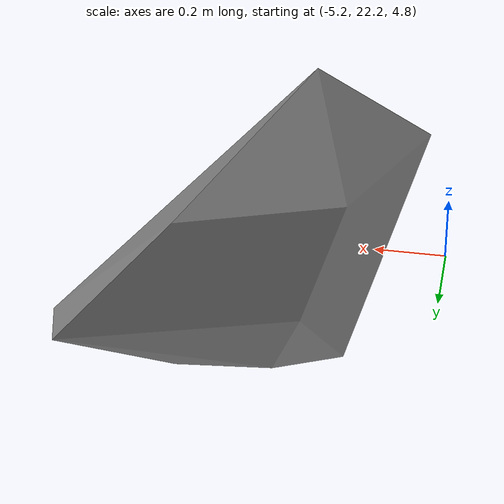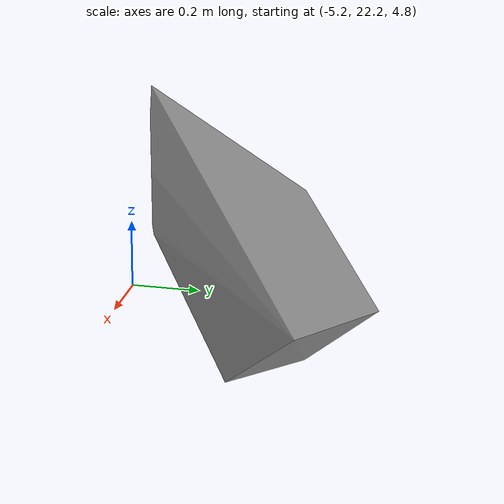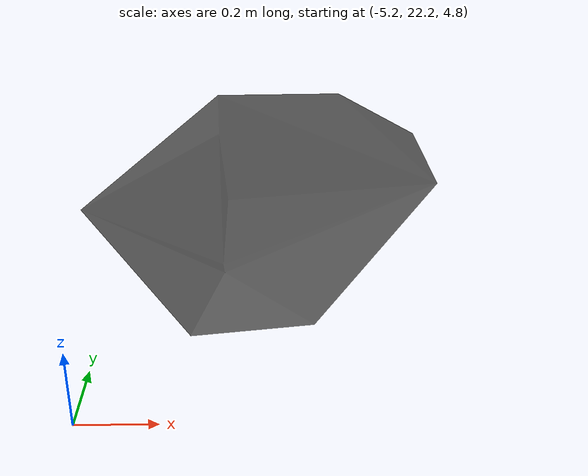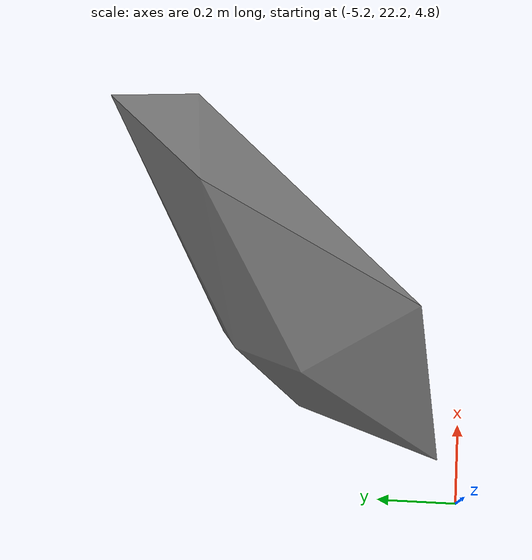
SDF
<sdf version="1.8">
 <model name="blue_mountains">
  <static>true</static>
  <link name="forest_19_22">
   <collision name="tree_61_trunk">
    <pose>-4.82197 22.80459 3.752576 0 0 2.12504</pose>
    <geometry><cylinder><radius>0.04198392</radius><length>2.217703</length></cylinder></geometry>
   </collision>
   <collision name="plant_61_crown_0">
    <pose>-4.813131 22.79031 2.643724 0 0 2.12504</pose>
    <geometry>
     <mesh>
      <uri>model://blue_mountains/meshes/canopy_6_0.dae</uri>
      <scale>0.1679357 0.1679357 0.1634717</scale>
     </mesh>
    </geometry>
   </collision>
   <collision name="plant_61_crown_1">
    <pose>-4.813131 22.79031 2.643724 0 0 2.12504</pose>
    <geometry>
     <mesh>
      <uri>model://blue_mountains/meshes/canopy_6_1.dae</uri>
      <scale>0.1679357 0.1679357 0.1634717</scale>
     </mesh>
    </geometry>
   </collision>
   <collision name="tree_62_trunk">
    <pose>-9.667411 28.63758 5.918337 0 0 -0.3924778</pose>
    <geometry><cylinder><radius>0.06214889</radius><length>4.033402</length></cylinder></geometry>
   </collision>
   <collision name="plant_62_crown_0">
    <pose>-9.69038 28.64709 3.901636 0 0 -0.3924778</pose>
    <geometry>
     <mesh>
      <uri>model://blue_mountains/meshes/canopy_6_0.dae</uri>
      <scale>0.2485955 0.2485955 0.2973108</scale>
     </mesh>
    </geometry>
   </collision>
   <collision name="plant_62_crown_1">
    <pose>-9.69038 28.64709 3.901636 0 0 -0.3924778</pose>
    <geometry>
     <mesh>
      <uri>model://blue_mountains/meshes/canopy_6_1.dae</uri>
      <scale>0.2485955 0.2485955 0.2973108</scale>
     </mesh>
    </geometry>
   </collision>
   <collision name="tree_80_trunk">
    <pose>-6.611314 23.09933 4.518539 0 0 -2.353343</pose>
    <geometry><cylinder><radius>0.06227639</radius><length>3.821296</length></cylinder></geometry>
   </collision>
   <collision name="plant_80_crown_0">
    <pose>-6.59375 23.11699 2.607891 0 0 -2.353343</pose>
    <geometry>
     <mesh>
      <uri>model://blue_mountains/meshes/canopy_2_0.dae</uri>
      <scale>0.2491056 0.2491056 0.2811533</scale>
     </mesh>
    </geometry>
   </collision>
   <collision name="plant_80_crown_1">
    <pose>-6.59375 23.11699 2.607891 0 0 -2.353343</pose>
    <geometry>
     <mesh>
      <uri>model://blue_mountains/meshes/canopy_2_1.dae</uri>
      <scale>0.2491056 0.2491056 0.2811533</scale>
     </mesh>
    </geometry>
   </collision>
   <collision name="tree_92_trunk">
    <pose>-7.458962 21.93963 3.470934 0 0 2.850743</pose>
    <geometry><cylinder><radius>0.047331</radius><length>2.869131</length></cylinder></geometry>
   </collision>
   <collision name="plant_92_crown_0">
    <pose>-7.440825 21.9342 2.036368 0 0 2.850743</pose>
    <geometry>
     <mesh><uri>model://blue_mountains/meshes/canopy_8_0.dae</uri><scale>0.189324 0.189324 0.2134891</scale></mesh>
    </geometry>
   </collision>
   <collision name="plant_92_crown_1">
    <pose>-7.440825 21.9342 2.036368 0 0 2.850743</pose>
    <geometry>
     <mesh><uri>model://blue_mountains/meshes/canopy_8_1.dae</uri><scale>0.189324 0.189324 0.2134891</scale></mesh>
    </geometry>
   </collision>
   <collision name="tree_106_trunk">
    <pose>-8.632932 22.7065 3.415829 0 0 2.49357</pose>
    <geometry><cylinder><radius>0.04585972</radius><length>2.408228</length></cylinder></geometry>
   </collision>
   <collision name="plant_106_crown_0">
    <pose>-8.618307 22.69543 2.211715 0 0 2.49357</pose>
    <geometry>
     <mesh>
      <uri>model://blue_mountains/meshes/canopy_0_0.dae</uri>
      <scale>0.1834389 0.1834389 0.1776055</scale>
     </mesh>
    </geometry>
   </collision>
   <collision name="plant_106_crown_1">
    <pose>-8.618307 22.69543 2.211715 0 0 2.49357</pose>
    <geometry>
     <mesh>
      <uri>model://blue_mountains/meshes/canopy_0_1.dae</uri>
      <scale>0.1834389 0.1834389 0.1776055</scale>
     </mesh>
    </geometry>
   </collision>
   <collision name="tree_155_trunk">
    <pose>-3.689798 20.40543 3.799383 0 0 1.683911</pose>
    <geometry><cylinder><radius>0.06800489</radius><length>4.10174</length></cylinder></geometry>
   </collision>
   <collision name="plant_155_crown_0">
    <pose>-3.686728 20.3784 1.748513 0 0 1.683911</pose>
    <geometry>
     <mesh>
      <uri>model://blue_mountains/meshes/canopy_2_0.dae</uri>
      <scale>0.2720196 0.2720196 0.301787</scale>
     </mesh>
    </geometry>
   </collision>
   <collision name="plant_155_crown_1">
    <pose>-3.686728 20.3784 1.748513 0 0 1.683911</pose>
    <geometry>
     <mesh>
      <uri>model://blue_mountains/meshes/canopy_2_1.dae</uri>
      <scale>0.2720196 0.2720196 0.301787</scale>
     </mesh>
    </geometry>
   </collision>
   <collision name="tree_262_trunk">
    <pose>-7.34623 25.30293 4.506537 0 0 1.070165</pose>
    <geometry><cylinder><radius>0.03874073</radius><length>2.28411</length></cylinder></geometry>
   </collision>
   <collision name="plant_262_crown_0">
    <pose>-7.353668 25.28934 3.364482 0 0 1.070165</pose>
    <geometry>
     <mesh>
      <uri>model://blue_mountains/meshes/canopy_4_0.dae</uri>
      <scale>0.1549629 0.1549629 0.1702042</scale>
     </mesh>
    </geometry>
   </collision>
   <collision name="plant_262_crown_1">
    <pose>-7.353668 25.28934 3.364482 0 0 1.070165</pose>
    <geometry>
     <mesh>
      <uri>model://blue_mountains/meshes/canopy_4_1.dae</uri>
      <scale>0.1549629 0.1549629 0.1702042</scale>
     </mesh>
    </geometry>
   </collision>
   <collision name="tree_302_trunk">
    <pose>-7.956891 28.1513 6.436017 0 0 2.399663</pose>
    <geometry><cylinder><radius>0.07226137</radius><length>4.655691</length></cylinder></geometry>
   </collision>
   <collision name="plant_302_crown_0">
    <pose>-7.935583 28.13177 4.108171 0 0 2.399663</pose>
    <geometry>
     <mesh>
      <uri>model://blue_mountains/meshes/canopy_1_0.dae</uri>
      <scale>0.2890455 0.2890455 0.3438731</scale>
     </mesh>
    </geometry>
   </collision>
   <collision name="plant_302_crown_1">
    <pose>-7.935583 28.13177 4.108171 0 0 2.399663</pose>
    <geometry>
     <mesh>
      <uri>model://blue_mountains/meshes/canopy_1_1.dae</uri>
      <scale>0.2890455 0.2890455 0.3438731</scale>
     </mesh>
    </geometry>
   </collision>
   <collision name="tree_316_trunk">
    <pose>-5.686775 21.81315 3.842307 0 0 -0.3890445</pose>
    <geometry><cylinder><radius>0.05991006</radius><length>3.372733</length></cylinder></geometry>
   </collision>
   <collision name="plant_316_crown_0">
    <pose>-5.708948 21.82224 2.15594 0 0 -0.3890445</pose>
    <geometry>
     <mesh>
      <uri>model://blue_mountains/meshes/canopy_4_0.dae</uri>
      <scale>0.2396402 0.2396402 0.2513248</scale>
     </mesh>
    </geometry>
   </collision>
   <collision name="plant_316_crown_1">
    <pose>-5.708948 21.82224 2.15594 0 0 -0.3890445</pose>
    <geometry>
     <mesh>
      <uri>model://blue_mountains/meshes/canopy_4_1.dae</uri>
      <scale>0.2396402 0.2396402 0.2513248</scale>
     </mesh>
    </geometry>
   </collision>
   <collision name="tree_338_trunk">
    <pose>-6.477381 22.17483 3.251121 0 0 -0.6842324</pose>
    <geometry><cylinder><radius>0.04284691</radius><length>2.033236</length></cylinder></geometry>
   </collision>
   <collision name="plant_338_crown_0">
    <pose>-6.490662 22.18567 2.234503 0 0 -0.6842324</pose>
    <geometry>
     <mesh>
      <uri>model://blue_mountains/meshes/canopy_1_0.dae</uri>
      <scale>0.1713877 0.1713877 0.1501765</scale>
     </mesh>
    </geometry>
   </collision>
   <collision name="plant_338_crown_1">
    <pose>-6.490662 22.18567 2.234503 0 0 -0.6842324</pose>
    <geometry>
     <mesh>
      <uri>model://blue_mountains/meshes/canopy_1_1.dae</uri>
      <scale>0.1713877 0.1713877 0.1501765</scale>
     </mesh>
    </geometry>
   </collision>
   <collision name="tree_363_trunk">
    <pose>-2.957322 20.66504 3.238127 0 0 -0.121291</pose>
    <geometry><cylinder><radius>0.04689038</radius><length>2.600481</length></cylinder></geometry>
   </collision>
   <collision name="plant_363_crown_0">
    <pose>-2.975941 20.66731 1.937887 0 0 -0.121291</pose>
    <geometry>
     <mesh>
      <uri>model://blue_mountains/meshes/canopy_4_0.dae</uri>
      <scale>0.1875615 0.1875615 0.1937792</scale>
     </mesh>
    </geometry>
   </collision>
   <collision name="plant_363_crown_1">
    <pose>-2.975941 20.66731 1.937887 0 0 -0.121291</pose>
    <geometry>
     <mesh>
      <uri>model://blue_mountains/meshes/canopy_4_1.dae</uri>
      <scale>0.1875615 0.1875615 0.1937792</scale>
     </mesh>
    </geometry>
   </collision>
   <collision name="tree_378_trunk">
    <pose>-1.625824 20.02046 3.50505 0 0 -0.5336751</pose>
    <geometry><cylinder><radius>0.05415034</radius><length>3.324213</length></cylinder></geometry>
   </collision>
   <collision name="plant_378_crown_0">
    <pose>-1.644472 20.03148 1.842943 0 0 -0.5336751</pose>
    <geometry>
     <mesh>
      <uri>model://blue_mountains/meshes/canopy_8_0.dae</uri>
      <scale>0.2166014 0.2166014 0.2473512</scale>
     </mesh>
    </geometry>
   </collision>
   <collision name="plant_378_crown_1">
    <pose>-1.644472 20.03148 1.842943 0 0 -0.5336751</pose>
    <geometry>
     <mesh>
      <uri>model://blue_mountains/meshes/canopy_8_1.dae</uri>
      <scale>0.2166014 0.2166014 0.2473512</scale>
     </mesh>
    </geometry>
   </collision>
   <collision name="plant_478_crown_0">
    <pose>-0.07554626 24.46427 4.338704 0 0 0</pose>
    <geometry>
     <mesh>
      <uri>model://blue_mountains/meshes/canopy_10_0.dae</uri>
      <scale>0.07575656 0.07575656 0.06926315</scale>
     </mesh>
    </geometry>
   </collision>
   <collision name="plant_478_crown_1">
    <pose>-0.07554626 24.46427 4.338704 0 0 0</pose>
    <geometry>
     <mesh>
      <uri>model://blue_mountains/meshes/canopy_10_1.dae</uri>
      <scale>0.07575656 0.07575656 0.06926315</scale>
     </mesh>
    </geometry>
   </collision>
   <collision name="plant_486_crown_0">
    <pose>-3.505169 29.79588 5.383806 0 0 0</pose>
    <geometry>
     <mesh>
      <uri>model://blue_mountains/meshes/canopy_10_0.dae</uri>
      <scale>0.07575656 0.07575656 0.06926315</scale>
     </mesh>
    </geometry>
   </collision>
   <collision name="plant_486_crown_1">
    <pose>-3.505169 29.79588 5.383806 0 0 0</pose>
    <geometry>
     <mesh>
      <uri>model://blue_mountains/meshes/canopy_10_1.dae</uri>
      <scale>0.07575656 0.07575656 0.06926315</scale>
     </mesh>
    </geometry>
   </collision>
   <collision name="plant_488_crown_0">
    <pose>-2.554689 28.05011 5.15484 0 0 0</pose>
    <geometry>
     <mesh>
      <uri>model://blue_mountains/meshes/canopy_13_0.dae</uri>
      <scale>0.07575656 0.07575656 0.06926315</scale>
     </mesh>
    </geometry>
   </collision>
   <collision name="plant_488_crown_1">
    <pose>-2.554689 28.05011 5.15484 0 0 0</pose>
    <geometry>
     <mesh>
      <uri>model://blue_mountains/meshes/canopy_13_1.dae</uri>
      <scale>0.07575656 0.07575656 0.06926315</scale>
     </mesh>
    </geometry>
   </collision>
   <collision name="plant_492_crown_0">
    <pose>-2.222792 26.79599 4.864923 0 0 0</pose>
    <geometry>
     <mesh>
      <uri>model://blue_mountains/meshes/canopy_15_0.dae</uri>
      <scale>0.07575656 0.07575656 0.06926315</scale>
     </mesh>
    </geometry>
   </collision>
   <collision name="plant_492_crown_1">
    <pose>-2.222792 26.79599 4.864923 0 0 0</pose>
    <geometry>
     <mesh>
      <uri>model://blue_mountains/meshes/canopy_15_1.dae</uri>
      <scale>0.07575656 0.07575656 0.06926315</scale>
     </mesh>
    </geometry>
   </collision>
   <collision name="plant_501_crown_0">
    <pose>-3.142616 28.62023 5.21029 0 0 0</pose>
    <geometry>
     <mesh>
      <uri>model://blue_mountains/meshes/canopy_15_0.dae</uri>
      <scale>0.07575656 0.07575656 0.06926315</scale>
     </mesh>
    </geometry>
   </collision>
   <collision name="plant_501_crown_1">
    <pose>-3.142616 28.62023 5.21029 0 0 0</pose>
    <geometry>
     <mesh>
      <uri>model://blue_mountains/meshes/canopy_15_1.dae</uri>
      <scale>0.07575656 0.07575656 0.06926315</scale>
     </mesh>
    </geometry>
   </collision>
   <collision name="plant_503_crown_0">
    <pose>-1.364567 25.31269 4.470937 0 0 0</pose>
    <geometry>
     <mesh>
      <uri>model://blue_mountains/meshes/canopy_10_0.dae</uri>
      <scale>0.07575656 0.07575656 0.06926315</scale>
     </mesh>
    </geometry>
   </collision>
   <collision name="plant_503_crown_1">
    <pose>-1.364567 25.31269 4.470937 0 0 0</pose>
    <geometry>
     <mesh>
      <uri>model://blue_mountains/meshes/canopy_10_1.dae</uri>
      <scale>0.07575656 0.07575656 0.06926315</scale>
     </mesh>
    </geometry>
   </collision>
   <collision name="plant_510_crown_0">
    <pose>-4.200932 28.00529 4.986528 0 0 0</pose>
    <geometry>
     <mesh>
      <uri>model://blue_mountains/meshes/canopy_9_0.dae</uri>
      <scale>0.07575656 0.07575656 0.06926315</scale>
     </mesh>
    </geometry>
   </collision>
   <collision name="plant_510_crown_1">
    <pose>-4.200932 28.00529 4.986528 0 0 0</pose>
    <geometry>
     <mesh>
      <uri>model://blue_mountains/meshes/canopy_9_1.dae</uri>
      <scale>0.07575656 0.07575656 0.06926315</scale>
     </mesh>
    </geometry>
   </collision>
   <collision name="plant_512_crown_0">
    <pose>-1.260822 25.48781 4.545585 0 0 0</pose>
    <geometry>
     <mesh>
      <uri>model://blue_mountains/meshes/canopy_11_0.dae</uri>
      <scale>0.07575656 0.07575656 0.06926315</scale>
     </mesh>
    </geometry>
   </collision>
   <collision name="plant_512_crown_1">
    <pose>-1.260822 25.48781 4.545585 0 0 0</pose>
    <geometry>
     <mesh>
      <uri>model://blue_mountains/meshes/canopy_11_1.dae</uri>
      <scale>0.07575656 0.07575656 0.06926315</scale>
     </mesh>
    </geometry>
   </collision>
   <collision name="plant_516_crown_0">
    <pose>-2.227432 26.9493 4.908726 0 0 0</pose>
    <geometry>
     <mesh>
      <uri>model://blue_mountains/meshes/canopy_17_0.dae</uri>
      <scale>0.07575656 0.07575656 0.06926315</scale>
     </mesh>
    </geometry>
   </collision>
   <collision name="plant_516_crown_1">
    <pose>-2.227432 26.9493 4.908726 0 0 0</pose>
    <geometry>
     <mesh>
      <uri>model://blue_mountains/meshes/canopy_17_1.dae</uri>
      <scale>0.07575656 0.07575656 0.06926315</scale>
     </mesh>
    </geometry>
   </collision>
   <collision name="plant_520_crown_0">
    <pose>-1.483984 28.52597 5.371708 0 0 0</pose>
    <geometry>
     <mesh>
      <uri>model://blue_mountains/meshes/canopy_13_0.dae</uri>
      <scale>0.07575656 0.07575656 0.06926315</scale>
     </mesh>
    </geometry>
   </collision>
   <collision name="plant_520_crown_1">
    <pose>-1.483984 28.52597 5.371708 0 0 0</pose>
    <geometry>
     <mesh>
      <uri>model://blue_mountains/meshes/canopy_13_1.dae</uri>
      <scale>0.07575656 0.07575656 0.06926315</scale>
     </mesh>
    </geometry>
   </collision>
   <collision name="plant_521_crown_0">
    <pose>-0.5519505 23.64646 3.946235 0 0 0</pose>
    <geometry>
     <mesh>
      <uri>model://blue_mountains/meshes/canopy_14_0.dae</uri>
      <scale>0.07575656 0.07575656 0.06926315</scale>
     </mesh>
    </geometry>
   </collision>
   <collision name="plant_521_crown_1">
    <pose>-0.5519505 23.64646 3.946235 0 0 0</pose>
    <geometry>
     <mesh>
      <uri>model://blue_mountains/meshes/canopy_14_1.dae</uri>
      <scale>0.07575656 0.07575656 0.06926315</scale>
     </mesh>
    </geometry>
   </collision>
   <collision name="plant_528_crown_0">
    <pose>-0.04639435 25.50495 4.719502 0 0 0</pose>
    <geometry>
     <mesh>
      <uri>model://blue_mountains/meshes/canopy_14_0.dae</uri>
      <scale>0.07575656 0.07575656 0.06926315</scale>
     </mesh>
    </geometry>
   </collision>
   <collision name="plant_528_crown_1">
    <pose>-0.04639435 25.50495 4.719502 0 0 0</pose>
    <geometry>
     <mesh>
      <uri>model://blue_mountains/meshes/canopy_14_1.dae</uri>
      <scale>0.07575656 0.07575656 0.06926315</scale>
     </mesh>
    </geometry>
   </collision>
   <collision name="plant_529_crown_0">
    <pose>-0.2608871 25.48609 4.680513 0 0 0</pose>
    <geometry>
     <mesh>
      <uri>model://blue_mountains/meshes/canopy_16_0.dae</uri>
      <scale>0.07575656 0.07575656 0.06926315</scale>
     </mesh>
    </geometry>
   </collision>
   <collision name="plant_529_crown_1">
    <pose>-0.2608871 25.48609 4.680513 0 0 0</pose>
    <geometry>
     <mesh>
      <uri>model://blue_mountains/meshes/canopy_16_1.dae</uri>
      <scale>0.07575656 0.07575656 0.06926315</scale>
     </mesh>
    </geometry>
   </collision>
   <collision name="plant_565_crown_0">
    <pose>-1.392147 20.53051 21.58232 0 0 0.01575403</pose>
    <geometry>
     <mesh>
      <uri>model://blue_mountains/meshes/canopy_15_0.dae</uri>
      <scale>0.05503642 0.05503642 0.03962622</scale>
     </mesh>
    </geometry>
   </collision>
   <collision name="plant_565_crown_1">
    <pose>-1.392147 20.53051 21.58232 0 0 0.01575403</pose>
    <geometry>
     <mesh>
      <uri>model://blue_mountains/meshes/canopy_15_1.dae</uri>
      <scale>0.05503642 0.05503642 0.03962622</scale>
     </mesh>
    </geometry>
   </collision>
   <collision name="plant_572_crown_0">
    <pose>-1.56275 22.3571 11.62574 0 0 1.854018</pose>
    <geometry>
     <mesh>
      <uri>model://blue_mountains/meshes/canopy_16_0.dae</uri>
      <scale>0.05755518 0.05755518 0.04143973</scale>
     </mesh>
    </geometry>
   </collision>
   <collision name="plant_572_crown_1">
    <pose>-1.56275 22.3571 11.62574 0 0 1.854018</pose>
    <geometry>
     <mesh>
      <uri>model://blue_mountains/meshes/canopy_16_1.dae</uri>
      <scale>0.05755518 0.05755518 0.04143973</scale>
     </mesh>
    </geometry>
   </collision>
   <collision name="plant_577_crown_0">
    <pose>-0.2200203 27.10436 23.74679 0 0 -0.8483046</pose>
    <geometry>
     <mesh>
      <uri>model://blue_mountains/meshes/canopy_11_0.dae</uri>
      <scale>0.03270402 0.03270402 0.0235469</scale>
     </mesh>
    </geometry>
   </collision>
   <collision name="plant_577_crown_1">
    <pose>-0.2200203 27.10436 23.74679 0 0 -0.8483046</pose>
    <geometry>
     <mesh>
      <uri>model://blue_mountains/meshes/canopy_11_1.dae</uri>
      <scale>0.03270402 0.03270402 0.0235469</scale>
     </mesh>
    </geometry>
   </collision>
   <collision name="plant_579_crown_0">
    <pose>-0.3604927 27.27842 17.90271 0 0 -1.446068</pose>
    <geometry>
     <mesh>
      <uri>model://blue_mountains/meshes/canopy_13_0.dae</uri>
      <scale>0.05891911 0.05891911 0.04242177</scale>
     </mesh>
    </geometry>
   </collision>
   <collision name="plant_579_crown_1">
    <pose>-0.3604927 27.27842 17.90271 0 0 -1.446068</pose>
    <geometry>
     <mesh>
      <uri>model://blue_mountains/meshes/canopy_13_1.dae</uri>
      <scale>0.05891911 0.05891911 0.04242177</scale>
     </mesh>
    </geometry>
   </collision>
   <collision name="plant_586_crown_0">
    <pose>-0.4629803 27.4086 15.95469 0 0 2.168116</pose>
    <geometry>
     <mesh>
      <uri>model://blue_mountains/meshes/canopy_11_0.dae</uri>
      <scale>0.03865387 0.03865387 0.02783079</scale>
     </mesh>
    </geometry>
   </collision>
   <collision name="plant_586_crown_1">
    <pose>-0.4629803 27.4086 15.95469 0 0 2.168116</pose>
    <geometry>
     <mesh>
      <uri>model://blue_mountains/meshes/canopy_11_1.dae</uri>
      <scale>0.03865387 0.03865387 0.02783079</scale>
     </mesh>
    </geometry>
   </collision>
   <collision name="plant_592_crown_0">
    <pose>-0.4629803 27.4086 15.95469 0 0 -1.991083</pose>
    <geometry>
     <mesh>
      <uri>model://blue_mountains/meshes/canopy_15_0.dae</uri>
      <scale>0.04052606 0.04052606 0.02917877</scale>
     </mesh>
    </geometry>
   </collision>
   <collision name="plant_592_crown_1">
    <pose>-0.4629803 27.4086 15.95469 0 0 -1.991083</pose>
    <geometry>
     <mesh>
      <uri>model://blue_mountains/meshes/canopy_15_1.dae</uri>
      <scale>0.04052606 0.04052606 0.02917877</scale>
     </mesh>
    </geometry>
   </collision>
   <collision name="plant_594_crown_0">
    <pose>-0.3072262 20.13579 11.62574 0 0 1.238431</pose>
    <geometry>
     <mesh>
      <uri>model://blue_mountains/meshes/canopy_10_0.dae</uri>
      <scale>0.04421652 0.04421652 0.03183589</scale>
     </mesh>
    </geometry>
   </collision>
   <collision name="plant_594_crown_1">
    <pose>-0.3072262 20.13579 11.62574 0 0 1.238431</pose>
    <geometry>
     <mesh>
      <uri>model://blue_mountains/meshes/canopy_10_1.dae</uri>
      <scale>0.04421652 0.04421652 0.03183589</scale>
     </mesh>
    </geometry>
   </collision>
   <collision name="plant_596_crown_0">
    <pose>-0.4629803 27.4086 15.95469 0 0 0.4374875</pose>
    <geometry>
     <mesh>
      <uri>model://blue_mountains/meshes/canopy_12_0.dae</uri>
      <scale>0.04023358 0.04023358 0.02896818</scale>
     </mesh>
    </geometry>
   </collision>
   <collision name="plant_596_crown_1">
    <pose>-0.4629803 27.4086 15.95469 0 0 0.4374875</pose>
    <geometry>
     <mesh>
      <uri>model://blue_mountains/meshes/canopy_12_1.dae</uri>
      <scale>0.04023358 0.04023358 0.02896818</scale>
     </mesh>
    </geometry>
   </collision>
   <collision name="plant_599_crown_0">
    <pose>-0.4629803 27.4086 15.95469 0 0 2.965837</pose>
    <geometry>
     <mesh>
      <uri>model://blue_mountains/meshes/canopy_16_0.dae</uri>
      <scale>0.04824617 0.04824617 0.03473724</scale>
     </mesh>
    </geometry>
   </collision>
   <collision name="plant_599_crown_1">
    <pose>-0.4629803 27.4086 15.95469 0 0 2.965837</pose>
    <geometry>
     <mesh>
      <uri>model://blue_mountains/meshes/canopy_16_1.dae</uri>
      <scale>0.04824617 0.04824617 0.03473724</scale>
     </mesh>
    </geometry>
   </collision>
   <collision name="plant_604_crown_0">
    <pose>-1.56275 22.3571 11.62574 0 0 -2.503276</pose>
    <geometry>
     <mesh>
      <uri>model://blue_mountains/meshes/canopy_11_0.dae</uri>
      <scale>0.06547491 0.06547491 0.04714194</scale>
     </mesh>
    </geometry>
   </collision>
   <collision name="plant_604_crown_1">
    <pose>-1.56275 22.3571 11.62574 0 0 -2.503276</pose>
    <geometry>
     <mesh>
      <uri>model://blue_mountains/meshes/canopy_11_1.dae</uri>
      <scale>0.06547491 0.06547491 0.04714194</scale>
     </mesh>
    </geometry>
   </collision>
   <collision name="plant_606_crown_0">
    <pose>-0.3072262 20.13579 11.62574 0 0 -1.82321</pose>
    <geometry>
     <mesh>
      <uri>model://blue_mountains/meshes/canopy_13_0.dae</uri>
      <scale>0.04817337 0.04817337 0.03468483</scale>
     </mesh>
    </geometry>
   </collision>
   <collision name="plant_606_crown_1">
    <pose>-0.3072262 20.13579 11.62574 0 0 -1.82321</pose>
    <geometry>
     <mesh>
      <uri>model://blue_mountains/meshes/canopy_13_1.dae</uri>
      <scale>0.04817337 0.04817337 0.03468483</scale>
     </mesh>
    </geometry>
   </collision>
   <collision name="plant_614_crown_0">
    <pose>-1.761665 27.4086 21.58232 0 0 1.390718</pose>
    <geometry>
     <mesh>
      <uri>model://blue_mountains/meshes/canopy_12_0.dae</uri>
      <scale>0.06415169 0.06415169 0.04618922</scale>
     </mesh>
    </geometry>
   </collision>
   <collision name="plant_614_crown_1">
    <pose>-1.761665 27.4086 21.58232 0 0 1.390718</pose>
    <geometry>
     <mesh>
      <uri>model://blue_mountains/meshes/canopy_12_1.dae</uri>
      <scale>0.06415169 0.06415169 0.04618922</scale>
     </mesh>
    </geometry>
   </collision>
   <collision name="plant_619_crown_0">
    <pose>-2.454512 22.55866 21.58232 0 0 0.6691755</pose>
    <geometry>
     <mesh>
      <uri>model://blue_mountains/meshes/canopy_15_0.dae</uri>
      <scale>0.05999588 0.05999588 0.04319704</scale>
     </mesh>
    </geometry>
   </collision>
   <collision name="plant_619_crown_1">
    <pose>-2.454512 22.55866 21.58232 0 0 0.6691755</pose>
    <geometry>
     <mesh>
      <uri>model://blue_mountains/meshes/canopy_15_1.dae</uri>
      <scale>0.05999588 0.05999588 0.04319704</scale>
     </mesh>
    </geometry>
   </collision>
   <visual name="forest_visual">
    <geometry><mesh><uri>model://blue_mountains/meshes/forest_19_22.dae</uri></mesh></geometry>
    <cast_shadows>false</cast_shadows>
   </visual>
  </link>
 </model>
</sdf>
